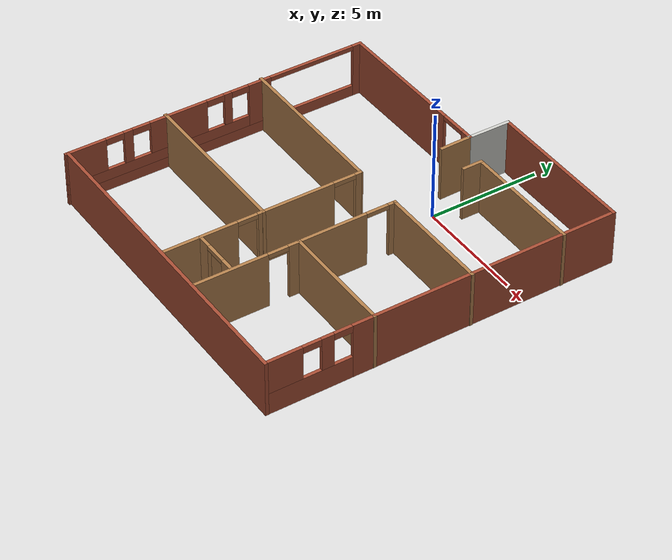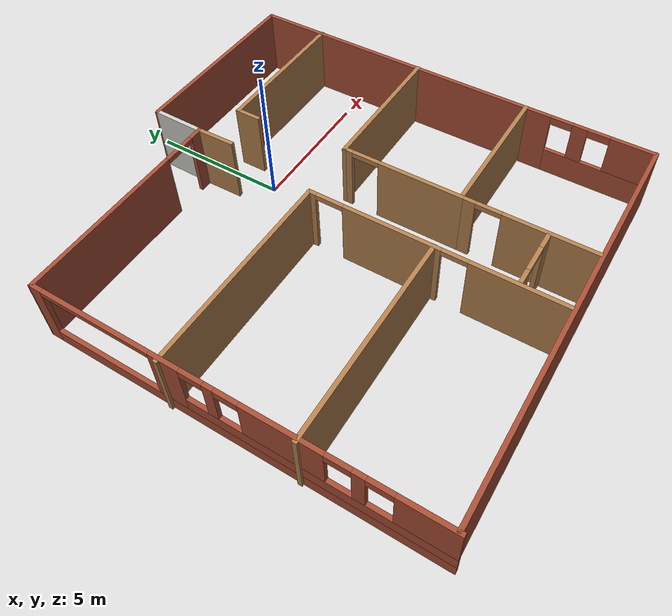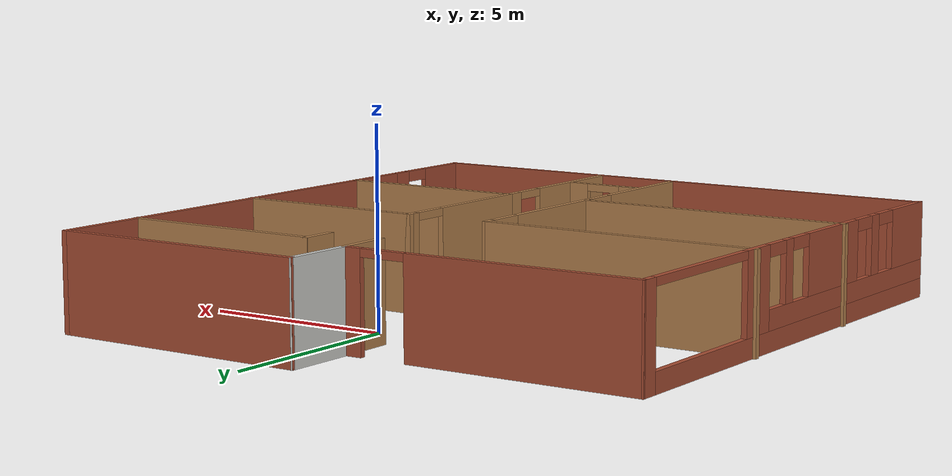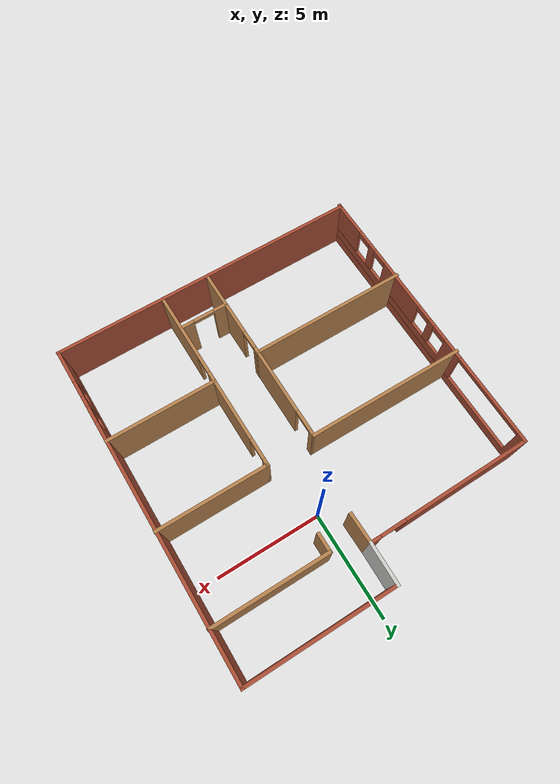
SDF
<?xml version='1.0'?>
<sdf version='1.7'>
  <model name='mybuilding'>
    <pose>-1.2992 -3.73368 0 0 -0 0</pose>
    <link name='Wall_11'>
      <collision name='Wall_11_Collision'>
        <geometry>
          <box>
            <size>0.965254 0.15 2.5</size>
          </box>
        </geometry>
        <pose>0 0 1.25 0 -0 0</pose>
      </collision>
      <visual name='Wall_11_Visual'>
        <pose>0 0 1.25 0 -0 0</pose>
        <geometry>
          <box>
            <size>0.965254 0.15 2.5</size>
          </box>
        </geometry>
        <material>
          <script>
            <uri>file://media/materials/scripts/gazebo.material</uri>
            <name>Gazebo/Wood</name>
          </script>
          <ambient>1 1 1 1</ambient>
        </material>
        <meta>
          <layer>0</layer>
        </meta>
      </visual>
      <pose>1.99623 5.08433 0 0 -0 1.5708</pose>
    </link>
    <link name='Wall_12'>
      <collision name='Wall_12_Collision'>
        <geometry>
          <box>
            <size>5.5 0.15 2.5</size>
          </box>
        </geometry>
        <pose>0 0 1.25 0 -0 0</pose>
      </collision>
      <visual name='Wall_12_Visual'>
        <pose>0 0 1.25 0 -0 0</pose>
        <geometry>
          <box>
            <size>5.5 0.15 2.5</size>
          </box>
        </geometry>
        <material>
          <script>
            <uri>file://media/materials/scripts/gazebo.material</uri>
            <name>Gazebo/Wood</name>
          </script>
          <ambient>1 1 1 1</ambient>
        </material>
        <meta>
          <layer>0</layer>
        </meta>
      </visual>
      <pose>4.68739 5.49196 0 0 -0 0</pose>
    </link>
    <link name='Wall_14'>
      <collision name='Wall_14_Collision'>
        <geometry>
          <box>
            <size>7.49125 0.15 2.5</size>
          </box>
        </geometry>
        <pose>0 0 1.25 0 -0 0</pose>
      </collision>
      <visual name='Wall_14_Visual'>
        <pose>0 0 1.25 0 -0 0</pose>
        <geometry>
          <box>
            <size>7.49125 0.15 2.5</size>
          </box>
        </geometry>
        <material>
          <script>
            <uri>file://media/materials/scripts/gazebo.material</uri>
            <name>Gazebo/Wood</name>
          </script>
          <ambient>0.435294 0.796078 0.67451 1</ambient>
        </material>
        <meta>
          <layer>0</layer>
        </meta>
      </visual>
      <pose>-3.69161 1.17227 0 0 -0 -0.003208</pose>
    </link>
    <link name='Wall_16'>
      <collision name='Wall_16_Collision'>
        <geometry>
          <box>
            <size>5.26555 0.15 2.5</size>
          </box>
        </geometry>
        <pose>0 0 1.25 0 -0 0</pose>
      </collision>
      <visual name='Wall_16_Visual'>
        <pose>0 0 1.25 0 -0 0</pose>
        <geometry>
          <box>
            <size>5.26555 0.15 2.5</size>
          </box>
        </geometry>
        <material>
          <script>
            <uri>file://media/materials/scripts/gazebo.material</uri>
            <name>Gazebo/Wood</name>
          </script>
          <ambient>1 1 1 1</ambient>
        </material>
        <meta>
          <layer>0</layer>
        </meta>
      </visual>
      <pose>4.80468 1.23813 0 0 -0 0</pose>
    </link>
    <link name='Wall_23'>
      <pose>2.2469 -0.936869 0 0 -0 -1.5708</pose>
      <visual name='Wall_23_Visual_0'>
        <pose>-2.05658 0 1.25 0 -0 0</pose>
        <geometry>
          <box>
            <size>0.386836 0.15 2.5</size>
          </box>
        </geometry>
        <material>
          <script>
            <uri>file://media/materials/scripts/gazebo.material</uri>
            <name>Gazebo/Wood</name>
          </script>
          <ambient>1 1 1 1</ambient>
        </material>
        <meta>
          <layer>0</layer>
        </meta>
      </visual>
      <collision name='Wall_23_Collision_0'>
        <geometry>
          <box>
            <size>0.386836 0.15 2.5</size>
          </box>
        </geometry>
        <pose>-2.05658 0 1.25 0 -0 0</pose>
      </collision>
      <visual name='Wall_23_Visual_1'>
        <pose>0.693418 0 1.25 0 -0 0</pose>
        <geometry>
          <box>
            <size>3.11316 0.15 2.5</size>
          </box>
        </geometry>
        <material>
          <script>
            <uri>file://media/materials/scripts/gazebo.material</uri>
            <name>Gazebo/Wood</name>
          </script>
          <ambient>1 1 1 1</ambient>
        </material>
        <meta>
          <layer>0</layer>
        </meta>
      </visual>
      <collision name='Wall_23_Collision_1'>
        <geometry>
          <box>
            <size>3.11316 0.15 2.5</size>
          </box>
        </geometry>
        <pose>0.693418 0 1.25 0 -0 0</pose>
      </collision>
      <visual name='Wall_23_Visual_2'>
        <pose>-1.36316 0 2.4 0 -0 0</pose>
        <geometry>
          <box>
            <size>1 0.15 0.2</size>
          </box>
        </geometry>
        <material>
          <script>
            <uri>file://media/materials/scripts/gazebo.material</uri>
            <name>Gazebo/Wood</name>
          </script>
          <ambient>1 1 1 1</ambient>
        </material>
        <meta>
          <layer>0</layer>
        </meta>
      </visual>
      <collision name='Wall_23_Collision_2'>
        <geometry>
          <box>
            <size>1 0.15 0.2</size>
          </box>
        </geometry>
        <pose>-1.36316 0 2.4 0 -0 0</pose>
      </collision>
    </link>
    <link name='Wall_4'>
      <pose>-3.4028 5.98818 0 0 -0 0.011763</pose>
      <visual name='Wall_4_Visual_0'>
        <pose>-0.879458 0 1.25 0 -0 0</pose>
        <geometry>
          <box>
            <size>6.12687 0.15 2.5</size>
          </box>
        </geometry>
        <material>
          <script>
            <uri>file://media/materials/scripts/gazebo.material</uri>
            <name>Gazebo/Bricks</name>
          </script>
          <ambient>1 1 1 1</ambient>
        </material>
        <meta>
          <layer>0</layer>
        </meta>
      </visual>
      <collision name='Wall_4_Collision_0'>
        <geometry>
          <box>
            <size>6.12687 0.15 2.5</size>
          </box>
        </geometry>
        <pose>-0.879458 0 1.25 0 -0 0</pose>
      </collision>
      <visual name='Wall_4_Visual_1'>
        <pose>3.66343 0 1.25 0 -0 0</pose>
        <geometry>
          <box>
            <size>0.558917 0.15 2.5</size>
          </box>
        </geometry>
        <material>
          <script>
            <uri>file://media/materials/scripts/gazebo.material</uri>
            <name>Gazebo/Bricks</name>
          </script>
          <ambient>1 1 1 1</ambient>
        </material>
        <meta>
          <layer>0</layer>
        </meta>
      </visual>
      <collision name='Wall_4_Collision_1'>
        <geometry>
          <box>
            <size>0.558917 0.15 2.5</size>
          </box>
        </geometry>
        <pose>3.66343 0 1.25 0 -0 0</pose>
      </collision>
      <visual name='Wall_4_Visual_2'>
        <pose>2.78397 0 2.4 0 -0 0</pose>
        <geometry>
          <box>
            <size>1.2 0.15 0.2</size>
          </box>
        </geometry>
        <material>
          <script>
            <uri>file://media/materials/scripts/gazebo.material</uri>
            <name>Gazebo/Bricks</name>
          </script>
          <ambient>1 1 1 1</ambient>
        </material>
        <meta>
          <layer>0</layer>
        </meta>
      </visual>
      <collision name='Wall_4_Collision_2'>
        <geometry>
          <box>
            <size>1.2 0.15 0.2</size>
          </box>
        </geometry>
        <pose>2.78397 0 2.4 0 -0 0</pose>
      </collision>
    </link>
    <link name='Wall_40'>
      <collision name='Wall_40_Collision'>
        <geometry>
          <box>
            <size>7.5 0.15 2.5</size>
          </box>
        </geometry>
        <pose>0 0 1.25 0 -0 0</pose>
      </collision>
      <visual name='Wall_40_Visual'>
        <pose>0 0 1.25 0 -0 0</pose>
        <geometry>
          <box>
            <size>7.5 0.15 2.5</size>
          </box>
        </geometry>
        <material>
          <script>
            <uri>file://media/materials/scripts/gazebo.material</uri>
            <name>Gazebo/Wood</name>
          </script>
          <ambient>1 1 1 1</ambient>
        </material>
        <meta>
          <layer>0</layer>
        </meta>
      </visual>
      <pose>-3.68721 -3.31595 0 0 -0 0</pose>
    </link>
    <link name='Wall_43'>
      <collision name='Wall_43_Collision'>
        <geometry>
          <box>
            <size>14.75 0.15 2.5</size>
          </box>
        </geometry>
        <pose>0 0 1.25 0 -0 0</pose>
      </collision>
      <visual name='Wall_43_Visual'>
        <pose>0 0 1.25 0 -0 0</pose>
        <geometry>
          <box>
            <size>14.75 0.15 2.5</size>
          </box>
        </geometry>
        <material>
          <script>
            <uri>file://media/materials/scripts/gazebo.material</uri>
            <name>Gazebo/Bricks</name>
          </script>
          <ambient>1 1 1 1</ambient>
        </material>
        <meta>
          <layer>0</layer>
        </meta>
      </visual>
      <pose>0.048155 -7.81123 0 0 -0 3.14159</pose>
    </link>
    <link name='Wall_45'>
      <collision name='Wall_45_Collision'>
        <geometry>
          <box>
            <size>5.25 0.15 2.5</size>
          </box>
        </geometry>
        <pose>0 0 1.25 0 -0 0</pose>
      </collision>
      <visual name='Wall_45_Visual'>
        <pose>0 0 1.25 0 -0 0</pose>
        <geometry>
          <box>
            <size>5.25 0.15 2.5</size>
          </box>
        </geometry>
        <material>
          <script>
            <uri>file://media/materials/scripts/gazebo.material</uri>
            <name>Gazebo/Wood</name>
          </script>
          <ambient>1 1 1 1</ambient>
        </material>
        <meta>
          <layer>0</layer>
        </meta>
      </visual>
      <pose>4.7969 -3.11187 0 0 -0 0</pose>
    </link>
    <link name='Wall_5'>
      <collision name='Wall_5_Collision'>
        <geometry>
          <box>
            <size>1.5 0.15 2.5</size>
          </box>
        </geometry>
        <pose>0 0 1.25 0 -0 0</pose>
      </collision>
      <visual name='Wall_5_Visual'>
        <pose>0 0 1.25 0 -0 0</pose>
        <geometry>
          <box>
            <size>1.5 0.15 2.5</size>
          </box>
        </geometry>
        <material>
          <script>
            <uri>file://media/materials/scripts/gazebo.material</uri>
            <name>Gazebo/Wood</name>
          </script>
          <ambient>1 1 1 1</ambient>
        </material>
        <meta>
          <layer>0</layer>
        </meta>
      </visual>
      <pose>0.476493 5.35886 0 0 -0 -1.55406</pose>
    </link>
    <link name='Wall_50'>
      <pose>7.33779 0.084048 0 0 -0 -1.5708</pose>
      <visual name='Wall_50_Visual_0'>
        <pose>-1.85511 0 1.25 0 -0 0</pose>
        <geometry>
          <box>
            <size>12.0398 0.15 2.5</size>
          </box>
        </geometry>
        <material>
          <script>
            <uri>file://media/materials/scripts/gazebo.material</uri>
            <name>Gazebo/Bricks</name>
          </script>
          <ambient>1 1 1 1</ambient>
        </material>
        <meta>
          <layer>0</layer>
        </meta>
      </visual>
      <collision name='Wall_50_Collision_0'>
        <geometry>
          <box>
            <size>12.0398 0.15 2.5</size>
          </box>
        </geometry>
        <pose>-1.85511 0 1.25 0 -0 0</pose>
      </collision>
      <visual name='Wall_50_Visual_1'>
        <pose>6.01989 0 0.5 0 -0 0</pose>
        <geometry>
          <box>
            <size>3.71022 0.15 1</size>
          </box>
        </geometry>
        <material>
          <script>
            <uri>file://media/materials/scripts/gazebo.material</uri>
            <name>Gazebo/Bricks</name>
          </script>
          <ambient>1 1 1 1</ambient>
        </material>
        <meta>
          <layer>0</layer>
        </meta>
      </visual>
      <collision name='Wall_50_Collision_1'>
        <geometry>
          <box>
            <size>3.71022 0.15 1</size>
          </box>
        </geometry>
        <pose>6.01989 0 0.5 0 -0 0</pose>
      </collision>
      <visual name='Wall_50_Visual_2'>
        <pose>5.2405 0 1.75 0 -0 0</pose>
        <geometry>
          <box>
            <size>0.551444 0.15 1.5</size>
          </box>
        </geometry>
        <material>
          <script>
            <uri>file://media/materials/scripts/gazebo.material</uri>
            <name>Gazebo/Bricks</name>
          </script>
          <ambient>1 1 1 1</ambient>
        </material>
        <meta>
          <layer>0</layer>
        </meta>
      </visual>
      <collision name='Wall_50_Collision_2'>
        <geometry>
          <box>
            <size>0.551444 0.15 1.5</size>
          </box>
        </geometry>
        <pose>5.2405 0 1.75 0 -0 0</pose>
      </collision>
      <visual name='Wall_50_Visual_3'>
        <pose>7.09561 0 1.75 0 -0 0</pose>
        <geometry>
          <box>
            <size>1.55878 0.15 1.5</size>
          </box>
        </geometry>
        <material>
          <script>
            <uri>file://media/materials/scripts/gazebo.material</uri>
            <name>Gazebo/Bricks</name>
          </script>
          <ambient>1 1 1 1</ambient>
        </material>
        <meta>
          <layer>0</layer>
        </meta>
      </visual>
      <collision name='Wall_50_Collision_3'>
        <geometry>
          <box>
            <size>1.55878 0.15 1.5</size>
          </box>
        </geometry>
        <pose>7.09561 0 1.75 0 -0 0</pose>
      </collision>
      <visual name='Wall_50_Visual_4'>
        <pose>4.56478 0 2.35 0 -0 0</pose>
        <geometry>
          <box>
            <size>0.8 0.15 0.3</size>
          </box>
        </geometry>
        <material>
          <script>
            <uri>file://media/materials/scripts/gazebo.material</uri>
            <name>Gazebo/Bricks</name>
          </script>
          <ambient>1 1 1 1</ambient>
        </material>
        <meta>
          <layer>0</layer>
        </meta>
      </visual>
      <collision name='Wall_50_Collision_4'>
        <geometry>
          <box>
            <size>0.8 0.15 0.3</size>
          </box>
        </geometry>
        <pose>4.56478 0 2.35 0 -0 0</pose>
      </collision>
      <visual name='Wall_50_Visual_5'>
        <pose>5.91622 0 2.35 0 -0 0</pose>
        <geometry>
          <box>
            <size>0.8 0.15 0.3</size>
          </box>
        </geometry>
        <material>
          <script>
            <uri>file://media/materials/scripts/gazebo.material</uri>
            <name>Gazebo/Bricks</name>
          </script>
          <ambient>1 1 1 1</ambient>
        </material>
        <meta>
          <layer>0</layer>
        </meta>
      </visual>
      <collision name='Wall_50_Collision_5'>
        <geometry>
          <box>
            <size>0.8 0.15 0.3</size>
          </box>
        </geometry>
        <pose>5.91622 0 2.35 0 -0 0</pose>
      </collision>
    </link>
    <link name='Wall_52'>
      <pose>-7.28208 -0.971066 0 0 -0 -1.57243</pose>
      <visual name='Wall_52_Visual_0'>
        <pose>-6.74926 0 1.25 0 -0 0</pose>
        <geometry>
          <box>
            <size>0.478525 0.15 2.5</size>
          </box>
        </geometry>
        <material>
          <script>
            <uri>file://media/materials/scripts/gazebo.material</uri>
            <name>Gazebo/Bricks</name>
          </script>
          <ambient>1 1 1 1</ambient>
        </material>
        <meta>
          <layer>0</layer>
        </meta>
      </visual>
      <collision name='Wall_52_Collision_0'>
        <geometry>
          <box>
            <size>0.478525 0.15 2.5</size>
          </box>
        </geometry>
        <pose>-6.74926 0 1.25 0 -0 0</pose>
      </collision>
      <visual name='Wall_52_Visual_1'>
        <pose>0.239263 0 0.25 0 -0 0</pose>
        <geometry>
          <box>
            <size>13.4985 0.15 0.5</size>
          </box>
        </geometry>
        <material>
          <script>
            <uri>file://media/materials/scripts/gazebo.material</uri>
            <name>Gazebo/Bricks</name>
          </script>
          <ambient>1 1 1 1</ambient>
        </material>
        <meta>
          <layer>0</layer>
        </meta>
      </visual>
      <collision name='Wall_52_Collision_1'>
        <geometry>
          <box>
            <size>13.4985 0.15 0.5</size>
          </box>
        </geometry>
        <pose>0.239263 0 0.25 0 -0 0</pose>
      </collision>
      <visual name='Wall_52_Visual_2'>
        <pose>-1.98373 0 1.5 0 -0 0</pose>
        <geometry>
          <box>
            <size>1.05254 0.15 2</size>
          </box>
        </geometry>
        <material>
          <script>
            <uri>file://media/materials/scripts/gazebo.material</uri>
            <name>Gazebo/Bricks</name>
          </script>
          <ambient>1 1 1 1</ambient>
        </material>
        <meta>
          <layer>0</layer>
        </meta>
      </visual>
      <collision name='Wall_52_Collision_2'>
        <geometry>
          <box>
            <size>1.05254 0.15 2</size>
          </box>
        </geometry>
        <pose>-1.98373 0 1.5 0 -0 0</pose>
      </collision>
      <visual name='Wall_52_Visual_3'>
        <pose>2.76553 0 0.75 0 -0 0</pose>
        <geometry>
          <box>
            <size>8.44599 0.15 0.5</size>
          </box>
        </geometry>
        <material>
          <script>
            <uri>file://media/materials/scripts/gazebo.material</uri>
            <name>Gazebo/Bricks</name>
          </script>
          <ambient>1 1 1 1</ambient>
        </material>
        <meta>
          <layer>0</layer>
        </meta>
      </visual>
      <collision name='Wall_52_Collision_3'>
        <geometry>
          <box>
            <size>8.44599 0.15 0.5</size>
          </box>
        </geometry>
        <pose>2.76553 0 0.75 0 -0 0</pose>
      </collision>
      <visual name='Wall_52_Visual_4'>
        <pose>-0.477451 0 1.75 0 -0 0</pose>
        <geometry>
          <box>
            <size>0.360022 0.15 1.5</size>
          </box>
        </geometry>
        <material>
          <script>
            <uri>file://media/materials/scripts/gazebo.material</uri>
            <name>Gazebo/Bricks</name>
          </script>
          <ambient>1 1 1 1</ambient>
        </material>
        <meta>
          <layer>0</layer>
        </meta>
      </visual>
      <collision name='Wall_52_Collision_4'>
        <geometry>
          <box>
            <size>0.360022 0.15 1.5</size>
          </box>
        </geometry>
        <pose>-0.477451 0 1.75 0 -0 0</pose>
      </collision>
      <visual name='Wall_52_Visual_5'>
        <pose>1.82434 0 1.75 0 -0 0</pose>
        <geometry>
          <box>
            <size>2.64357 0.15 1.5</size>
          </box>
        </geometry>
        <material>
          <script>
            <uri>file://media/materials/scripts/gazebo.material</uri>
            <name>Gazebo/Bricks</name>
          </script>
          <ambient>1 1 1 1</ambient>
        </material>
        <meta>
          <layer>0</layer>
        </meta>
      </visual>
      <collision name='Wall_52_Collision_5'>
        <geometry>
          <box>
            <size>2.64357 0.15 1.5</size>
          </box>
        </geometry>
        <pose>1.82434 0 1.75 0 -0 0</pose>
      </collision>
      <visual name='Wall_52_Visual_6'>
        <pose>4.1487 0 1.75 0 -0 0</pose>
        <geometry>
          <box>
            <size>0.405136 0.15 1.5</size>
          </box>
        </geometry>
        <material>
          <script>
            <uri>file://media/materials/scripts/gazebo.material</uri>
            <name>Gazebo/Bricks</name>
          </script>
          <ambient>1 1 1 1</ambient>
        </material>
        <meta>
          <layer>0</layer>
        </meta>
      </visual>
      <collision name='Wall_52_Collision_6'>
        <geometry>
          <box>
            <size>0.405136 0.15 1.5</size>
          </box>
        </geometry>
        <pose>4.1487 0 1.75 0 -0 0</pose>
      </collision>
      <visual name='Wall_52_Visual_7'>
        <pose>6.06989 0 1.75 0 -0 0</pose>
        <geometry>
          <box>
            <size>1.83726 0.15 1.5</size>
          </box>
        </geometry>
        <material>
          <script>
            <uri>file://media/materials/scripts/gazebo.material</uri>
            <name>Gazebo/Bricks</name>
          </script>
          <ambient>1 1 1 1</ambient>
        </material>
        <meta>
          <layer>0</layer>
        </meta>
      </visual>
      <collision name='Wall_52_Collision_7'>
        <geometry>
          <box>
            <size>1.83726 0.15 1.5</size>
          </box>
        </geometry>
        <pose>6.06989 0 1.75 0 -0 0</pose>
      </collision>
      <visual name='Wall_52_Visual_8'>
        <pose>-1.05746 0 2.35 0 -0 0</pose>
        <geometry>
          <box>
            <size>0.8 0.15 0.3</size>
          </box>
        </geometry>
        <material>
          <script>
            <uri>file://media/materials/scripts/gazebo.material</uri>
            <name>Gazebo/Bricks</name>
          </script>
          <ambient>1 1 1 1</ambient>
        </material>
        <meta>
          <layer>0</layer>
        </meta>
      </visual>
      <collision name='Wall_52_Collision_8'>
        <geometry>
          <box>
            <size>0.8 0.15 0.3</size>
          </box>
        </geometry>
        <pose>-1.05746 0 2.35 0 -0 0</pose>
      </collision>
      <visual name='Wall_52_Visual_9'>
        <pose>0.10256 0 2.35 0 -0 0</pose>
        <geometry>
          <box>
            <size>0.8 0.15 0.3</size>
          </box>
        </geometry>
        <material>
          <script>
            <uri>file://media/materials/scripts/gazebo.material</uri>
            <name>Gazebo/Bricks</name>
          </script>
          <ambient>1 1 1 1</ambient>
        </material>
        <meta>
          <layer>0</layer>
        </meta>
      </visual>
      <collision name='Wall_52_Collision_9'>
        <geometry>
          <box>
            <size>0.8 0.15 0.3</size>
          </box>
        </geometry>
        <pose>0.10256 0 2.35 0 -0 0</pose>
      </collision>
      <visual name='Wall_52_Visual_10'>
        <pose>3.54613 0 2.35 0 -0 0</pose>
        <geometry>
          <box>
            <size>0.8 0.15 0.3</size>
          </box>
        </geometry>
        <material>
          <script>
            <uri>file://media/materials/scripts/gazebo.material</uri>
            <name>Gazebo/Bricks</name>
          </script>
          <ambient>1 1 1 1</ambient>
        </material>
        <meta>
          <layer>0</layer>
        </meta>
      </visual>
      <collision name='Wall_52_Collision_10'>
        <geometry>
          <box>
            <size>0.8 0.15 0.3</size>
          </box>
        </geometry>
        <pose>3.54613 0 2.35 0 -0 0</pose>
      </collision>
      <visual name='Wall_52_Visual_11'>
        <pose>4.75126 0 2.35 0 -0 0</pose>
        <geometry>
          <box>
            <size>0.8 0.15 0.3</size>
          </box>
        </geometry>
        <material>
          <script>
            <uri>file://media/materials/scripts/gazebo.material</uri>
            <name>Gazebo/Bricks</name>
          </script>
          <ambient>1 1 1 1</ambient>
        </material>
        <meta>
          <layer>0</layer>
        </meta>
      </visual>
      <collision name='Wall_52_Collision_11'>
        <geometry>
          <box>
            <size>0.8 0.15 0.3</size>
          </box>
        </geometry>
        <pose>4.75126 0 2.35 0 -0 0</pose>
      </collision>
      <visual name='Wall_52_Visual_12'>
        <pose>-4.51 0 2.4 0 -0 0</pose>
        <geometry>
          <box>
            <size>4 0.15 0.2</size>
          </box>
        </geometry>
        <material>
          <script>
            <uri>file://media/materials/scripts/gazebo.material</uri>
            <name>Gazebo/Bricks</name>
          </script>
          <ambient>1 1 1 1</ambient>
        </material>
        <meta>
          <layer>0</layer>
        </meta>
      </visual>
      <collision name='Wall_52_Collision_12'>
        <geometry>
          <box>
            <size>4 0.15 0.2</size>
          </box>
        </geometry>
        <pose>-4.51 0 2.4 0 -0 0</pose>
      </collision>
    </link>
    <link name='Wall_56'>
      <pose>-0.021003 -3.2645 0 0 -0 -1.5708</pose>
      <visual name='Wall_56_Visual_0'>
        <pose>-4.33009 0 1.25 0 -0 0</pose>
        <geometry>
          <box>
            <size>0.339823 0.15 2.5</size>
          </box>
        </geometry>
        <material>
          <script>
            <uri>file://media/materials/scripts/gazebo.material</uri>
            <name>Gazebo/Wood</name>
          </script>
          <ambient>1 1 1 1</ambient>
        </material>
        <meta>
          <layer>0</layer>
        </meta>
      </visual>
      <collision name='Wall_56_Collision_0'>
        <geometry>
          <box>
            <size>0.339823 0.15 2.5</size>
          </box>
        </geometry>
        <pose>-4.33009 0 1.25 0 -0 0</pose>
      </collision>
      <visual name='Wall_56_Visual_1'>
        <pose>-1.42689 0 1.25 0 -0 0</pose>
        <geometry>
          <box>
            <size>3.46657 0.15 2.5</size>
          </box>
        </geometry>
        <material>
          <script>
            <uri>file://media/materials/scripts/gazebo.material</uri>
            <name>Gazebo/Wood</name>
          </script>
          <ambient>1 1 1 1</ambient>
        </material>
        <meta>
          <layer>0</layer>
        </meta>
      </visual>
      <collision name='Wall_56_Collision_1'>
        <geometry>
          <box>
            <size>3.46657 0.15 2.5</size>
          </box>
        </geometry>
        <pose>-1.42689 0 1.25 0 -0 0</pose>
      </collision>
      <visual name='Wall_56_Visual_2'>
        <pose>2.85319 0 1.25 0 -0 0</pose>
        <geometry>
          <box>
            <size>3.29361 0.15 2.5</size>
          </box>
        </geometry>
        <material>
          <script>
            <uri>file://media/materials/scripts/gazebo.material</uri>
            <name>Gazebo/Wood</name>
          </script>
          <ambient>1 1 1 1</ambient>
        </material>
        <meta>
          <layer>0</layer>
        </meta>
      </visual>
      <collision name='Wall_56_Collision_2'>
        <geometry>
          <box>
            <size>3.29361 0.15 2.5</size>
          </box>
        </geometry>
        <pose>2.85319 0 1.25 0 -0 0</pose>
      </collision>
      <visual name='Wall_56_Visual_3'>
        <pose>-3.66018 0 2.4 0 -0 0</pose>
        <geometry>
          <box>
            <size>1 0.15 0.2</size>
          </box>
        </geometry>
        <material>
          <script>
            <uri>file://media/materials/scripts/gazebo.material</uri>
            <name>Gazebo/Wood</name>
          </script>
          <ambient>1 1 1 1</ambient>
        </material>
        <meta>
          <layer>0</layer>
        </meta>
      </visual>
      <collision name='Wall_56_Collision_3'>
        <geometry>
          <box>
            <size>1 0.15 0.2</size>
          </box>
        </geometry>
        <pose>-3.66018 0 2.4 0 -0 0</pose>
      </collision>
      <visual name='Wall_56_Visual_4'>
        <pose>0.756388 0 2.4 0 -0 0</pose>
        <geometry>
          <box>
            <size>0.9 0.15 0.2</size>
          </box>
        </geometry>
        <material>
          <script>
            <uri>file://media/materials/scripts/gazebo.material</uri>
            <name>Gazebo/Wood</name>
          </script>
          <ambient>1 1 1 1</ambient>
        </material>
        <meta>
          <layer>0</layer>
        </meta>
      </visual>
      <collision name='Wall_56_Collision_4'>
        <geometry>
          <box>
            <size>0.9 0.15 0.2</size>
          </box>
        </geometry>
        <pose>0.756388 0 2.4 0 -0 0</pose>
      </collision>
    </link>
    <link name='Wall_58'>
      <pose>2.2469 -5.41187 0 0 -0 -1.5708</pose>
      <visual name='Wall_58_Visual_0'>
        <pose>-2.0866 0 1.25 0 -0 0</pose>
        <geometry>
          <box>
            <size>0.576805 0.15 2.5</size>
          </box>
        </geometry>
        <material>
          <script>
            <uri>file://media/materials/scripts/gazebo.material</uri>
            <name>Gazebo/Wood</name>
          </script>
          <ambient>1 1 1 1</ambient>
        </material>
        <meta>
          <layer>0</layer>
        </meta>
      </visual>
      <collision name='Wall_58_Collision_0'>
        <geometry>
          <box>
            <size>0.576805 0.15 2.5</size>
          </box>
        </geometry>
        <pose>-2.0866 0 1.25 0 -0 0</pose>
      </collision>
      <visual name='Wall_58_Visual_1'>
        <pose>0.738403 0 1.25 0 -0 0</pose>
        <geometry>
          <box>
            <size>3.27319 0.15 2.5</size>
          </box>
        </geometry>
        <material>
          <script>
            <uri>file://media/materials/scripts/gazebo.material</uri>
            <name>Gazebo/Wood</name>
          </script>
          <ambient>1 1 1 1</ambient>
        </material>
        <meta>
          <layer>0</layer>
        </meta>
      </visual>
      <collision name='Wall_58_Collision_1'>
        <geometry>
          <box>
            <size>3.27319 0.15 2.5</size>
          </box>
        </geometry>
        <pose>0.738403 0 1.25 0 -0 0</pose>
      </collision>
      <visual name='Wall_58_Visual_2'>
        <pose>-1.3482 0 2.4 0 -0 0</pose>
        <geometry>
          <box>
            <size>0.9 0.15 0.2</size>
          </box>
        </geometry>
        <material>
          <script>
            <uri>file://media/materials/scripts/gazebo.material</uri>
            <name>Gazebo/Wood</name>
          </script>
          <ambient>1 1 1 1</ambient>
        </material>
        <meta>
          <layer>0</layer>
        </meta>
      </visual>
      <collision name='Wall_58_Collision_2'>
        <geometry>
          <box>
            <size>0.9 0.15 0.2</size>
          </box>
        </geometry>
        <pose>-1.3482 0 2.4 0 -0 0</pose>
      </collision>
    </link>
    <link name='Wall_60'>
      <pose>1.08087 -6.09705 0 0 -0 0</pose>
      <visual name='Wall_60_Visual_0'>
        <pose>-0.797942 0 1.25 0 -0 0</pose>
        <geometry>
          <box>
            <size>0.654115 0.15 2.5</size>
          </box>
        </geometry>
        <material>
          <script>
            <uri>file://media/materials/scripts/gazebo.material</uri>
            <name>Gazebo/Wood</name>
          </script>
          <ambient>1 1 1 1</ambient>
        </material>
        <meta>
          <layer>0</layer>
        </meta>
      </visual>
      <collision name='Wall_60_Collision_0'>
        <geometry>
          <box>
            <size>0.654115 0.15 2.5</size>
          </box>
        </geometry>
        <pose>-0.797942 0 1.25 0 -0 0</pose>
      </collision>
      <visual name='Wall_60_Visual_1'>
        <pose>0.827058 0 1.25 0 -0 0</pose>
        <geometry>
          <box>
            <size>0.595885 0.15 2.5</size>
          </box>
        </geometry>
        <material>
          <script>
            <uri>file://media/materials/scripts/gazebo.material</uri>
            <name>Gazebo/Wood</name>
          </script>
          <ambient>1 1 1 1</ambient>
        </material>
        <meta>
          <layer>0</layer>
        </meta>
      </visual>
      <collision name='Wall_60_Collision_1'>
        <geometry>
          <box>
            <size>0.595885 0.15 2.5</size>
          </box>
        </geometry>
        <pose>0.827058 0 1.25 0 -0 0</pose>
      </collision>
      <visual name='Wall_60_Visual_2'>
        <pose>0.029115 0 2.4 0 -0 0</pose>
        <geometry>
          <box>
            <size>1 0.15 0.2</size>
          </box>
        </geometry>
        <material>
          <script>
            <uri>file://media/materials/scripts/gazebo.material</uri>
            <name>Gazebo/Wood</name>
          </script>
          <ambient>1 1 1 1</ambient>
        </material>
        <meta>
          <layer>0</layer>
        </meta>
      </visual>
      <collision name='Wall_60_Collision_2'>
        <geometry>
          <box>
            <size>1 0.15 0.2</size>
          </box>
        </geometry>
        <pose>0.029115 0 2.4 0 -0 0</pose>
      </collision>
    </link>
    <link name='Wall_7'>
      <collision name='Wall_7_Collision'>
        <geometry>
          <box>
            <size>2 0.15 2.5</size>
          </box>
        </geometry>
        <pose>0 0 1.25 0 -0 0</pose>
      </collision>
      <visual name='Wall_7_Visual'>
        <pose>0 0 1.25 0 -0 0</pose>
        <geometry>
          <box>
            <size>2 0.15 2.5</size>
          </box>
        </geometry>
        <material>
          <script>
            <uri>file://media/materials/scripts/gazebo.material</uri>
            <name>Gazebo/CeilingTiled</name>
          </script>
          <ambient>1 1 1 1</ambient>
        </material>
        <meta>
          <layer>0</layer>
        </meta>
      </visual>
      <pose>0.476493 6.95886 0 0 -0 1.55859</pose>
    </link>
    <link name='Wall_8'>
      <collision name='Wall_8_Collision'>
        <geometry>
          <box>
            <size>7 0.15 2.5</size>
          </box>
        </geometry>
        <pose>0 0 1.25 0 -0 0</pose>
      </collision>
      <visual name='Wall_8_Visual'>
        <pose>0 0 1.25 0 -0 0</pose>
        <geometry>
          <box>
            <size>7 0.15 2.5</size>
          </box>
        </geometry>
        <material>
          <script>
            <uri>file://media/materials/scripts/gazebo.material</uri>
            <name>Gazebo/Bricks</name>
          </script>
          <ambient>1 1 1 1</ambient>
        </material>
        <meta>
          <layer>0</layer>
        </meta>
      </visual>
      <pose>3.91279 7.88405 0 0 -0 0</pose>
    </link>
    <static>1</static>
  </model>
</sdf>
